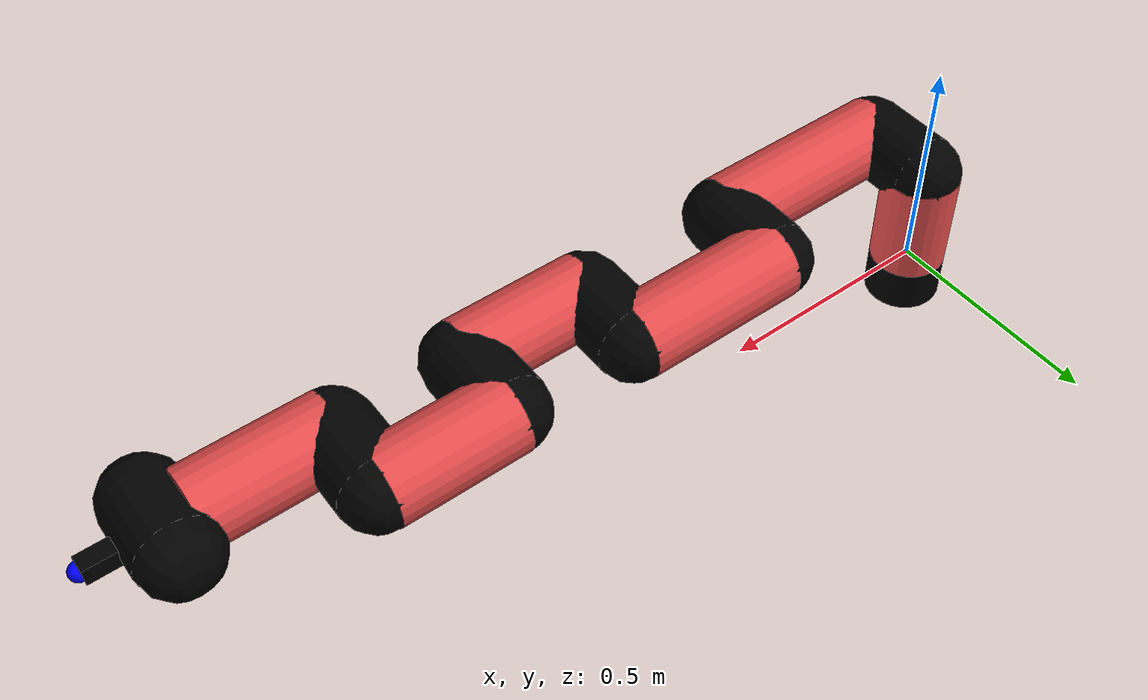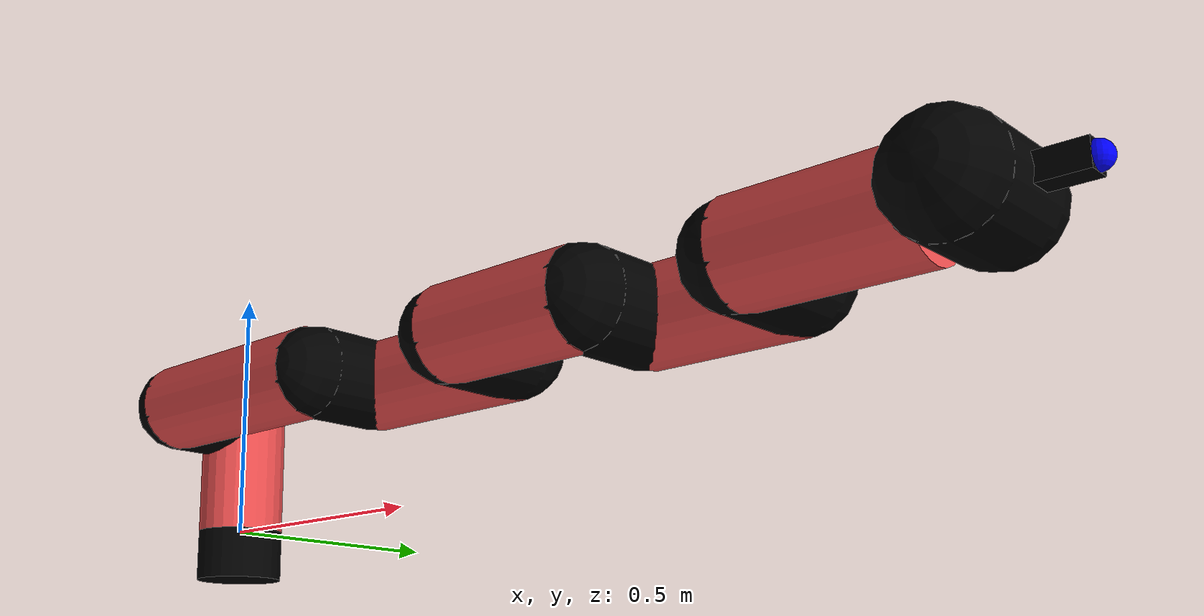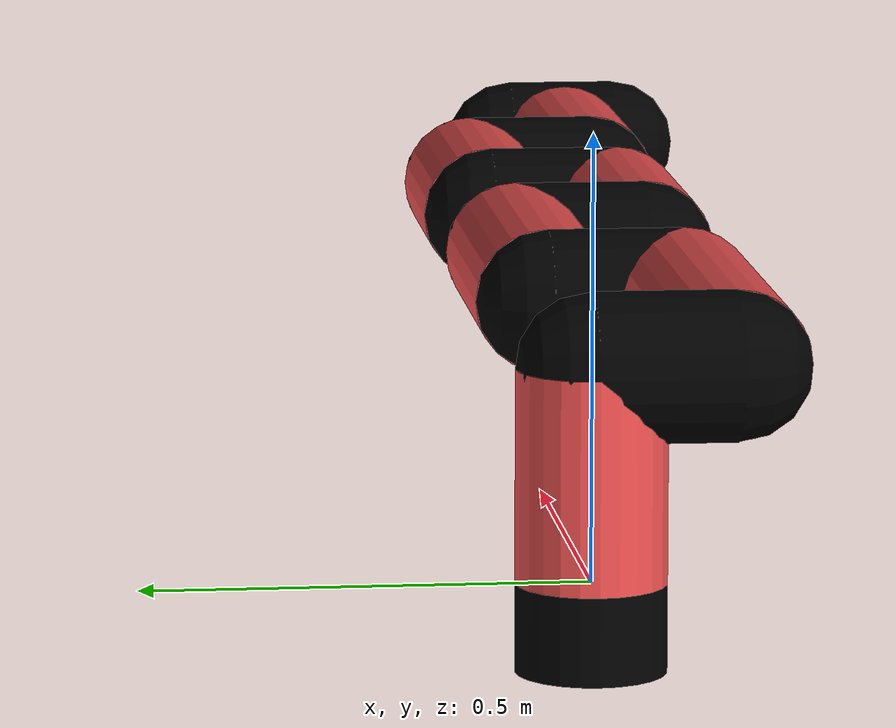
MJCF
<mujoco model="manipulator">
		<compiler angle="degree" coordinate="local" inertiafromgeom="auto" meshdir="meshes/"/>
		<option gravity="0 0 0" integrator="RK4" iterations="30" timestep="0.01"/>

		<default>
		<joint armature="1" limited="true" stiffness="10" damping="15" frictionloss="5.0"/>
		<geom conaffinity="1" condim="3" contype="1" friction=".5 .1 .1" margin="0.002"/>
		<motor ctrllimited="true"/>
		<position ctrllimited="true"/>
		</default>

		<asset>
		<texture builtin="gradient" height="100" rgb1="1.0 1.0 1.0" rgb2="1.0 1.0 1.0" type="skybox" width="100"/>
		<texture builtin="flat" height="32" name="arm_tex" rgb1="0.9 0.3 0.3" type="2d" width="32"/>
		<texture builtin="flat" height="32" name="gripper_tex" rgb1="0.0 0.0 0.0" type="cube" width="32"/>

		<material name="arm_mat" shininess="0.1" specular="0.1" texture="arm_tex"/>
		<material name="gripper_mat" shininess="1" specular="1" texture="gripper_tex"/>
		</asset>

		<worldbody>
		<light cutoff="45" diffuse=".8 .8 .8" dir="0 0.16 -1" directional="false" name="light" pos="0 -2.0 8.0" specular="0.3 0.3 0.3"/>

		<body name="base_link" pos="0 0 -0.1">
		<geom fromto="0 0 0 0 0 0.1" material="arm_mat" name="base_link" rgba="0.0 0.0 0.0 1" size="0.085" type="cylinder"/>
		</body>

		<body name="l1" pos="0 0 0">
<geom fromto="0 0 0 0 0 0.24" material="arm_mat" name="l1" rgba="0.9 0.3 0.3 1" size="0.085" type="cylinder"/>
<geom fromto="0 0 0.24 0 -0.16 0.24" material="arm_mat" name="l1_ex" rgba="0.0 0.0 0.0 1" size="0.085" type="capsule"/>
<joint axis="0 0 1" name="j1" pos="0 0 0" range="-90 90" damping="30.18" frictionloss="8.3"/>

<body name="l2" pos="0 -0.16 0.24">
<geom fromto="0 0 0 0.43 0 0" material="arm_mat" name="l2" rgba="0.9 0.3 0.3 1" size="0.085" type="cylinder"/>
<geom fromto="0.43 0 0 0.43 0.16 0" material="arm_mat" name="l2_ex" rgba="0.0 0.0 0.0 1" size="0.085" type="capsule"/>
<joint axis="0.0 1.0 0.0" name="j2" pos="0 0 0" range="-90 60" damping="30.04" frictionloss="11.99"/>

<body name="l3" pos="0.43 0.16 0">
<geom fromto="0 0 0 0.36 0 0" material="arm_mat" name="l3" rgba="0.9 0.3 0.3 1" size="0.085" type="cylinder"/>
<geom fromto="0.36 0 0 0.36 -0.16 0" material="arm_mat" name="l3_ex" rgba="0.0 0.0 0.0 1" size="0.085" type="capsule"/>
<joint axis="0.0 1.0 0.0" name="j3" pos="0 0 0" range="-30 60" damping="27.01" frictionloss="8.17"/>

<body name="l4" pos="0.36 -0.16 0">
<geom fromto="0 0 0 0.29 0 0" material="arm_mat" name="l4" rgba="0.9 0.3 0.3 1" size="0.085" type="cylinder"/>
<geom fromto="0.29 0 0 0.29 0.16 0" material="arm_mat" name="l4_ex" rgba="0.0 0.0 0.0 1" size="0.085" type="capsule"/>
<joint axis="0.0 1.0 0.0" name="j4" pos="0 0 0" range="-30 60" damping="32.53" frictionloss="10.39"/>

<body name="l5" pos="0.29 0.16 0">
<geom fromto="0 0 0 0.28 0 0" material="arm_mat" name="l5" rgba="0.9 0.3 0.3 1" size="0.085" type="cylinder"/>
<geom fromto="0.28 0 0 0.28 -0.16 0" material="arm_mat" name="l5_ex" rgba="0.0 0.0 0.0 1" size="0.085" type="capsule"/>
<joint axis="0.0 1.0 0.0" name="j5" pos="0 0 0" range="-30 60" damping="25.77" frictionloss="12.46"/>

<body name="l6" pos="0.28 -0.16 0">
<geom fromto="0 0 0 0.29 0 0" material="arm_mat" name="l6" rgba="0.9 0.3 0.3 1" size="0.085" type="cylinder"/>
<joint axis="0.0 1.0 0.0" name="j6" pos="0 0 0" range="-30 60" damping="35.89" frictionloss="11.58"/>

<body name="gripper" pos="0.29 0 0">
<geom fromto="0.05 -0.07 0 0.05 0.07 0" material="gripper_mat" name="gripper" rgba="0.0 0.0 0.0 1" size="0.085" type="capsule"/><joint axis="1 0 0" name="j7" pos="0 0 0" range="-90 90" damping="15" frictionloss="5.0"/><body name="finger" pos="0.1 0 0">
<geom fromto="0 0.0 0 0.1 0.0 0" material="gripper_mat" name="finger" rgba="0.0 0.0 0.0 1" size="0.020 0.06 0.06" type="box"/>
</body>
<site name="current" pos="0.2 0. 0.0" rgba="0. 0. 1.0 1" size="0.02" type="sphere"/>
</body>
</body>
</body>
</body>
</body>
</body>
</body>
</worldbody>
<actuator>
<motor ctrllimited="true" ctrlrange="-1.0 1.0" joint="j1" gear="83.29"/>
<motor ctrllimited="true" ctrlrange="-1.0 1.0" joint="j2" gear="78.61"/>
<motor ctrllimited="true" ctrlrange="-1.0 1.0" joint="j3" gear="88.29"/>
<motor ctrllimited="true" ctrlrange="-1.0 1.0" joint="j4" gear="77.43"/>
<motor ctrllimited="true" ctrlrange="-1.0 1.0" joint="j5" gear="68.13"/>
<motor ctrllimited="true" ctrlrange="-1.0 1.0" joint="j6" gear="99.31"/>
<motor ctrllimited="true" ctrlrange="-1.0 1.0" joint="j7" gear="80"/>
</actuator>
</mujoco>
